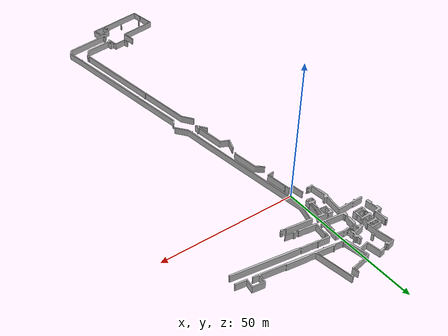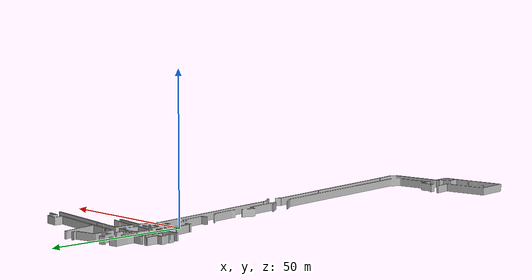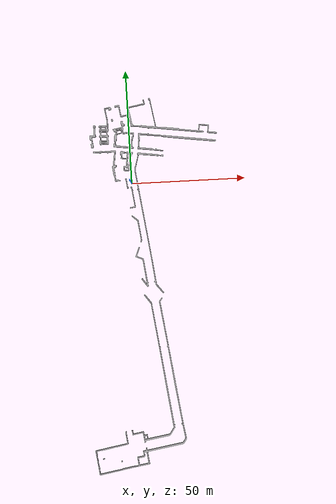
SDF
<?xml version='1.0'?>
<sdf version='1.5'>
 <model name="amk_basement">
    <pose>-38 -130 1.25  0 0 0</pose>
    <static>true</static>
    <link name="body">
      <visual name="visual">
        <geometry>
          <mesh><uri>file://amk_basement.stl</uri></mesh>
        </geometry>
      </visual>
      <collision name="collision">
        <geometry>
          <mesh><uri>file://amk_basement.stl</uri></mesh>
        </geometry>
      </collision>
    </link>
  </model>
</sdf>
